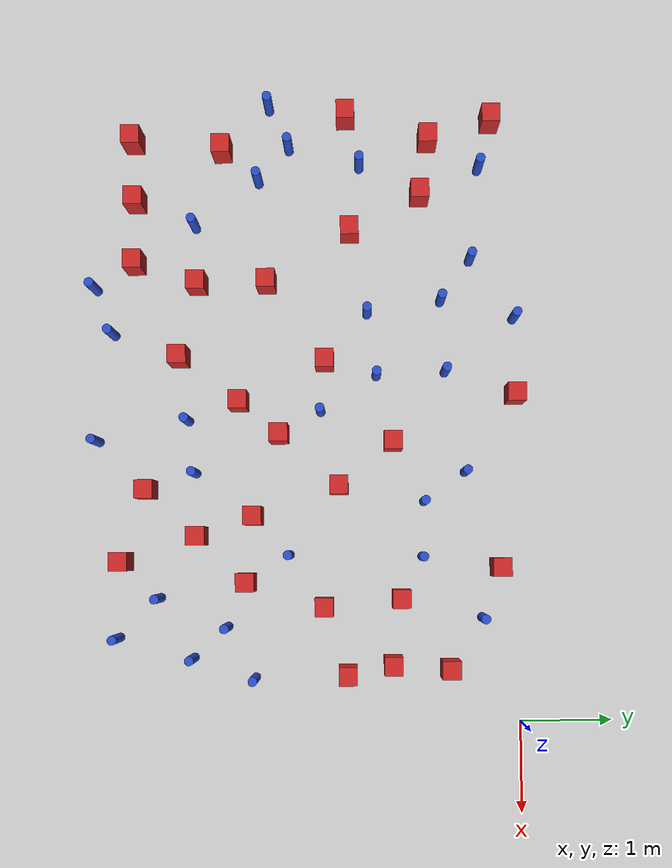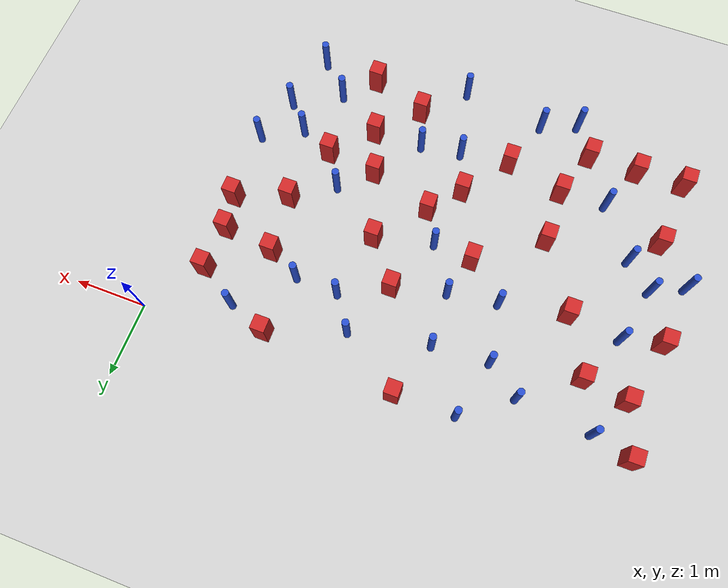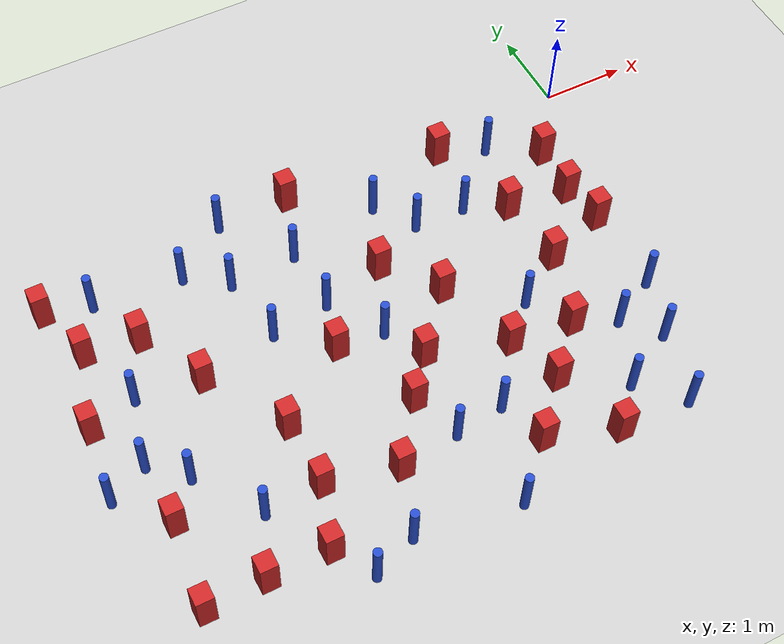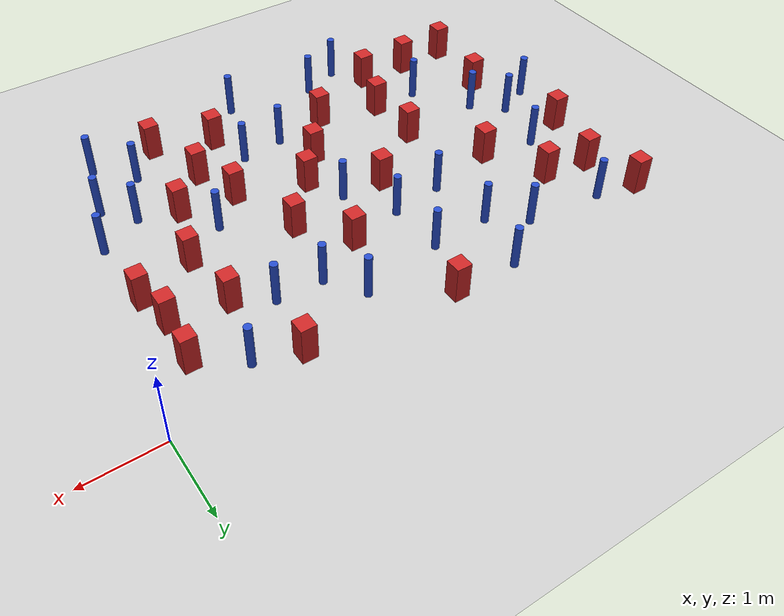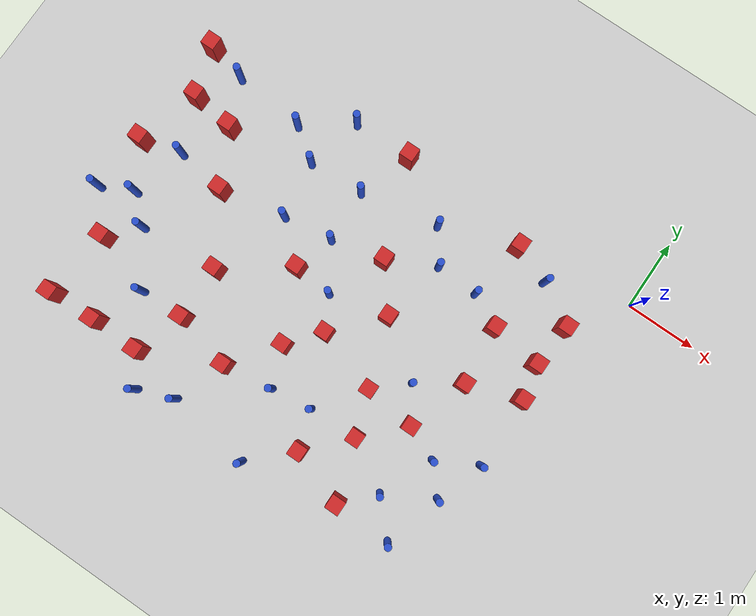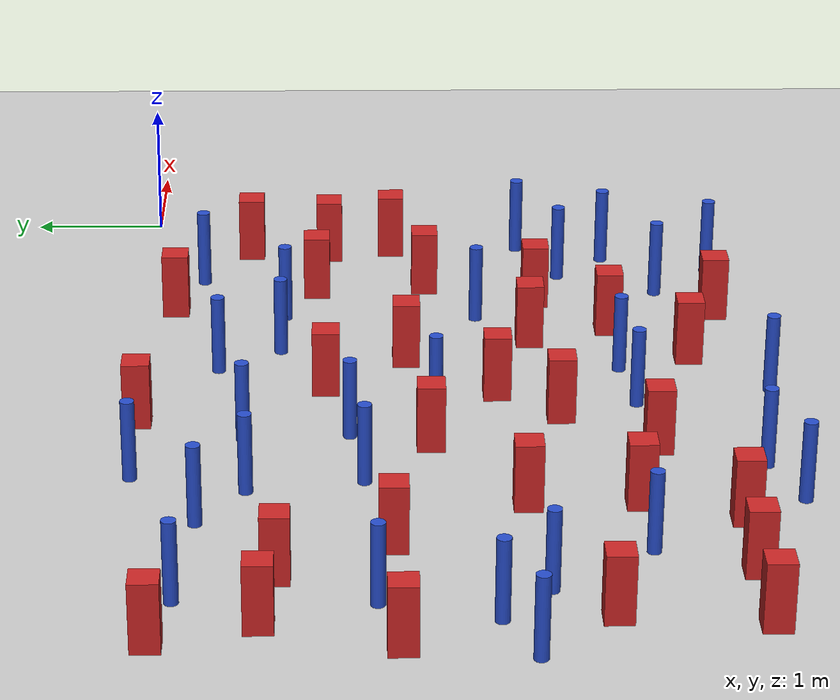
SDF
<sdf version="1.6">
 <world name="default">
  <model name="ground_plane">
   <static>1</static>
   <link name="link">
    <collision name="collision">
     <geometry><plane><normal>0 0 1</normal><size>100 100</size></plane></geometry>
     <surface><friction><ode><mu>100</mu><mu2>50</mu2></ode></friction></surface>
    </collision>
    <visual name="visual">
     <cast_shadows>0</cast_shadows>
     <geometry><plane><normal>0 0 1</normal><size>100 100</size></plane></geometry>
     <material>
      <ambient>1.0 1.0 1.0 1.0</ambient>
      <diffuse>0.8 0.8 0.8 1.0</diffuse>
      <specular>0.01 0.01 0.01 1.000000</specular>
     </material>
    </visual>
   </link>
  </model>
  <model name="square_post_obstacle0">
   <static>true</static>
   <pose>-4.84128660663 -2.74777889471 -6.11067671241e-07 -5.50515727128e-06 -8.79689657224e-07 2.37013304536e-05</pose>
   <link name="link">
    <pose>0 0 0.25 0 -0 0</pose>
    <inertial>
     <mass>100</mass>
     <inertia>
      <ixx>0.166667</ixx>
      <ixy>0</ixy>
      <ixz>0</ixz>
      <iyy>0.166667</iyy>
      <iyz>0</iyz>
      <izz>0.166667</izz>
     </inertia>
    </inertial>
    <collision name="collision"><geometry><box><size>.2 .2 .5</size></box></geometry></collision>
    <visual name="visual">
     <geometry><box><size>.2 .2 .5</size></box></geometry>
     <material>
      <script><name>Gazebo/Red</name><uri>file://media/materials/scripts/gazebo.material</uri></script>
     </material>
    </visual>
   </link>
  </model>
  <model name="pole_obstacle3">
   <static>true</static>
   <pose>-1.37695919305 -3.93688624927 -9.47619616065e-06 5.49618799737e-07 2.36310414062e-07 -1.55090534798e-07</pose>
   <link name="link">
    <pose>0 0 0.3 0 -0 0</pose>
    <inertial>
     <mass>1</mass>
     <inertia><ixx>0.145833</ixx><ixy>0</ixy><ixz>0</ixz><iyy>0.145833</iyy><iyz>0</iyz><izz>0.125</izz></inertia>
    </inertial>
    <collision name="collision">
     <geometry><cylinder><radius>0.05</radius><length>.6</length></cylinder></geometry>
    </collision>
    <visual name="visual">
     <geometry><cylinder><radius>0.05</radius><length>.6</length></cylinder></geometry>
     <material>
      <script><name>Gazebo/Blue</name><uri>file://media/materials/scripts/gazebo.material</uri></script>
     </material>
    </visual>
   </link>
  </model>
  <model name="pole_obstacle5">
   <static>true</static>
   <pose>-3.41100039363 -2.16447534626 -9.47619616065e-06 5.49618799737e-07 2.36310414051e-07 -1.55090534807e-07</pose>
   <link name="link">
    <pose>0 0 0.3 0 -0 0</pose>
    <inertial>
     <mass>1</mass>
     <inertia><ixx>0.145833</ixx><ixy>0</ixy><ixz>0</ixz><iyy>0.145833</iyy><iyz>0</iyz><izz>0.125</izz></inertia>
    </inertial>
    <collision name="collision">
     <geometry><cylinder><radius>0.05</radius><length>.6</length></cylinder></geometry>
    </collision>
    <visual name="visual">
     <geometry><cylinder><radius>0.05</radius><length>.6</length></cylinder></geometry>
     <material>
      <script><name>Gazebo/Blue</name><uri>file://media/materials/scripts/gazebo.material</uri></script>
     </material>
    </visual>
   </link>
  </model>
  <model name="pole_obstacle11">
   <static>true</static>
   <pose>-5.9821969087 -2.83860901818 -9.47619616065e-06 5.49618799738e-07 2.36310414051e-07 -1.55090534805e-07</pose>
   <link name="link">
    <pose>0 0 0.3 0 -0 0</pose>
    <inertial>
     <mass>1</mass>
     <inertia><ixx>0.145833</ixx><ixy>0</ixy><ixz>0</ixz><iyy>0.145833</iyy><iyz>0</iyz><izz>0.125</izz></inertia>
    </inertial>
    <collision name="collision">
     <geometry><cylinder><radius>0.05</radius><length>.6</length></cylinder></geometry>
    </collision>
    <visual name="visual">
     <geometry><cylinder><radius>0.05</radius><length>.6</length></cylinder></geometry>
     <material>
      <script><name>Gazebo/Blue</name><uri>file://media/materials/scripts/gazebo.material</uri></script>
     </material>
    </visual>
   </link>
  </model>
  <model name="pole_obstacle22">
   <static>true</static>
   <pose>-0.49837957228 -2.89466937588 -9.47619616065e-06 5.49618799737e-07 2.36310414073e-07 -1.55090534793e-07</pose>
   <link name="link">
    <pose>0 0 0.3 0 -0 0</pose>
    <inertial>
     <mass>1</mass>
     <inertia><ixx>0.145833</ixx><ixy>0</ixy><ixz>0</ixz><iyy>0.145833</iyy><iyz>0</iyz><izz>0.125</izz></inertia>
    </inertial>
    <collision name="collision">
     <geometry><cylinder><radius>0.05</radius><length>.6</length></cylinder></geometry>
    </collision>
    <visual name="visual">
     <geometry><cylinder><radius>0.05</radius><length>.6</length></cylinder></geometry>
     <material>
      <script><name>Gazebo/Blue</name><uri>file://media/materials/scripts/gazebo.material</uri></script>
     </material>
    </visual>
   </link>
  </model>
  <model name="pole_obstacle31">
   <static>true</static>
   <pose>-5.08320479765 -0.505455529545 -9.47619616065e-06 5.49618799737e-07 2.36310414058e-07 -1.55090534802e-07</pose>
   <link name="link">
    <pose>0 0 0.3 0 -0 0</pose>
    <inertial>
     <mass>1</mass>
     <inertia><ixx>0.145833</ixx><ixy>0</ixy><ixz>0</ixz><iyy>0.145833</iyy><iyz>0</iyz><izz>0.125</izz></inertia>
    </inertial>
    <collision name="collision">
     <geometry><cylinder><radius>0.05</radius><length>.6</length></cylinder></geometry>
    </collision>
    <visual name="visual">
     <geometry><cylinder><radius>0.05</radius><length>.6</length></cylinder></geometry>
     <material>
      <script><name>Gazebo/Blue</name><uri>file://media/materials/scripts/gazebo.material</uri></script>
     </material>
    </visual>
   </link>
  </model>
  <model name="square_post_obstacle27">
   <static>true</static>
   <pose>-2.0511467698 -3.5153492596 -6.11067671241e-07 -5.50515727128e-06 -8.79689657224e-07 2.37013304536e-05</pose>
   <link name="link">
    <pose>0 0 0.25 0 -0 0</pose>
    <inertial>
     <mass>100</mass>
     <inertia>
      <ixx>0.166667</ixx>
      <ixy>0</ixy>
      <ixz>0</ixz>
      <iyy>0.166667</iyy>
      <iyz>0</iyz>
      <izz>0.166667</izz>
     </inertia>
    </inertial>
    <collision name="collision"><geometry><box><size>.2 .2 .5</size></box></geometry></collision>
    <visual name="visual">
     <geometry><box><size>.2 .2 .5</size></box></geometry>
     <material>
      <script><name>Gazebo/Red</name><uri>file://media/materials/scripts/gazebo.material</uri></script>
     </material>
    </visual>
   </link>
  </model>
  <model name="pole_obstacle36">
   <static>true</static>
   <pose>-2.73302566658 -0.580288636693 -9.47619616065e-06 5.49618799738e-07 2.36310414075e-07 -1.55090534793e-07</pose>
   <link name="link">
    <pose>0 0 0.3 0 -0 0</pose>
    <inertial>
     <mass>1</mass>
     <inertia><ixx>0.145833</ixx><ixy>0</ixy><ixz>0</ixz><iyy>0.145833</iyy><iyz>0</iyz><izz>0.125</izz></inertia>
    </inertial>
    <collision name="collision">
     <geometry><cylinder><radius>0.05</radius><length>.6</length></cylinder></geometry>
    </collision>
    <visual name="visual">
     <geometry><cylinder><radius>0.05</radius><length>.6</length></cylinder></geometry>
     <material>
      <script><name>Gazebo/Blue</name><uri>file://media/materials/scripts/gazebo.material</uri></script>
     </material>
    </visual>
   </link>
  </model>
  <model name="pole_obstacle41">
   <static>true</static>
   <pose>-6.35357810904 -2.50001493775 -9.47619616065e-06 5.49618799738e-07 2.36310414051e-07 -1.55090534805e-07</pose>
   <link name="link">
    <pose>0 0 0.3 0 -0 0</pose>
    <inertial>
     <mass>1</mass>
     <inertia><ixx>0.145833</ixx><ixy>0</ixy><ixz>0</ixz><iyy>0.145833</iyy><iyz>0</iyz><izz>0.125</izz></inertia>
    </inertial>
    <collision name="collision">
     <geometry><cylinder><radius>0.05</radius><length>.6</length></cylinder></geometry>
    </collision>
    <visual name="visual">
     <geometry><cylinder><radius>0.05</radius><length>.6</length></cylinder></geometry>
     <material>
      <script><name>Gazebo/Blue</name><uri>file://media/materials/scripts/gazebo.material</uri></script>
     </material>
    </visual>
   </link>
  </model>
  <model name="pole_obstacle47">
   <static>true</static>
   <pose>-3.84033825678 -0.789848276871 -9.47619616065e-06 5.49618799737e-07 2.36310414035e-07 -1.55090534817e-07</pose>
   <link name="link">
    <pose>0 0 0.3 0 -0 0</pose>
    <inertial>
     <mass>1</mass>
     <inertia><ixx>0.145833</ixx><ixy>0</ixy><ixz>0</ixz><iyy>0.145833</iyy><iyz>0</iyz><izz>0.125</izz></inertia>
    </inertial>
    <collision name="collision">
     <geometry><cylinder><radius>0.05</radius><length>.6</length></cylinder></geometry>
    </collision>
    <visual name="visual">
     <geometry><cylinder><radius>0.05</radius><length>.6</length></cylinder></geometry>
     <material>
      <script><name>Gazebo/Blue</name><uri>file://media/materials/scripts/gazebo.material</uri></script>
     </material>
    </visual>
   </link>
  </model>
  <model name="square_post_obstacle36">
   <static>true</static>
   <pose>-1.54274375171 -2.98477448694 -6.11067671241e-07 -5.50515727128e-06 -8.79689657224e-07 2.37013304536e-05</pose>
   <link name="link">
    <pose>0 0 0.25 0 -0 0</pose>
    <inertial>
     <mass>100</mass>
     <inertia>
      <ixx>0.166667</ixx>
      <ixy>0</ixy>
      <ixz>0</ixz>
      <iyy>0.166667</iyy>
      <iyz>0</iyz>
      <izz>0.166667</izz>
     </inertia>
    </inertial>
    <collision name="collision"><geometry><box><size>.2 .2 .5</size></box></geometry></collision>
    <visual name="visual">
     <geometry><box><size>.2 .2 .5</size></box></geometry>
     <material>
      <script><name>Gazebo/Red</name><uri>file://media/materials/scripts/gazebo.material</uri></script>
     </material>
    </visual>
   </link>
  </model>
  <model name="square_post_obstacle38">
   <static>true</static>
   <pose>-1.77886218131 -4.34461334416 -6.11067671241e-07 -5.50515727128e-06 -8.79689657224e-07 2.37013304536e-05</pose>
   <link name="link">
    <pose>0 0 0.25 0 -0 0</pose>
    <inertial>
     <mass>100</mass>
     <inertia>
      <ixx>0.166667</ixx>
      <ixy>0</ixy>
      <ixz>0</ixz>
      <iyy>0.166667</iyy>
      <iyz>0</iyz>
      <izz>0.166667</izz>
     </inertia>
    </inertial>
    <collision name="collision"><geometry><box><size>.2 .2 .5</size></box></geometry></collision>
    <visual name="visual">
     <geometry><box><size>.2 .2 .5</size></box></geometry>
     <material>
      <script><name>Gazebo/Red</name><uri>file://media/materials/scripts/gazebo.material</uri></script>
     </material>
    </visual>
   </link>
  </model>
  <model name="pole_obstacle53">
   <static>true</static>
   <pose>-1.80769380041 -1.05893840154 -9.47619616065e-06 5.49618799737e-07 2.36310414065e-07 -1.55090534798e-07</pose>
   <link name="link">
    <pose>0 0 0.3 0 -0 0</pose>
    <inertial>
     <mass>1</mass>
     <inertia><ixx>0.145833</ixx><ixy>0</ixy><ixz>0</ixz><iyy>0.145833</iyy><iyz>0</iyz><izz>0.125</izz></inertia>
    </inertial>
    <collision name="collision">
     <geometry><cylinder><radius>0.05</radius><length>.6</length></cylinder></geometry>
    </collision>
    <visual name="visual">
     <geometry><cylinder><radius>0.05</radius><length>.6</length></cylinder></geometry>
     <material>
      <script><name>Gazebo/Blue</name><uri>file://media/materials/scripts/gazebo.material</uri></script>
     </material>
    </visual>
   </link>
  </model>
  <model name="pole_obstacle62">
   <static>true</static>
   <pose>-6.10871832045 -0.40047796162 -9.47619616065e-06 5.49618799737e-07 2.36310414057e-07 -1.55090534802e-07</pose>
   <link name="link">
    <pose>0 0 0.3 0 -0 0</pose>
    <inertial>
     <mass>1</mass>
     <inertia><ixx>0.145833</ixx><ixy>0</ixy><ixz>0</ixz><iyy>0.145833</iyy><iyz>0</iyz><izz>0.125</izz></inertia>
    </inertial>
    <collision name="collision">
     <geometry><cylinder><radius>0.05</radius><length>.6</length></cylinder></geometry>
    </collision>
    <visual name="visual">
     <geometry><cylinder><radius>0.05</radius><length>.6</length></cylinder></geometry>
     <material>
      <script><name>Gazebo/Blue</name><uri>file://media/materials/scripts/gazebo.material</uri></script>
     </material>
    </visual>
   </link>
  </model>
  <model name="pole_obstacle65">
   <static>true</static>
   <pose>-4.42916187396 -0.0282269583579 -9.47619616065e-06 5.49618799738e-07 2.36310414057e-07 -1.55090534804e-07</pose>
   <link name="link">
    <pose>0 0 0.3 0 -0 0</pose>
    <inertial>
     <mass>1</mass>
     <inertia><ixx>0.145833</ixx><ixy>0</ixy><ixz>0</ixz><iyy>0.145833</iyy><iyz>0</iyz><izz>0.125</izz></inertia>
    </inertial>
    <collision name="collision">
     <geometry><cylinder><radius>0.05</radius><length>.6</length></cylinder></geometry>
    </collision>
    <visual name="visual">
     <geometry><cylinder><radius>0.05</radius><length>.6</length></cylinder></geometry>
     <material>
      <script><name>Gazebo/Blue</name><uri>file://media/materials/scripts/gazebo.material</uri></script>
     </material>
    </visual>
   </link>
  </model>
  <model name="square_post_obstacle51">
   <static>true</static>
   <pose>-6.42600344967 -0.965142139668 -6.11067671241e-07 -5.50515727128e-06 -8.79689657224e-07 2.37013304536e-05</pose>
   <link name="link">
    <pose>0 0 0.25 0 -0 0</pose>
    <inertial>
     <mass>100</mass>
     <inertia>
      <ixx>0.166667</ixx>
      <ixy>0</ixy>
      <ixz>0</ixz>
      <iyy>0.166667</iyy>
      <iyz>0</iyz>
      <izz>0.166667</izz>
     </inertia>
    </inertial>
    <collision name="collision"><geometry><box><size>.2 .2 .5</size></box></geometry></collision>
    <visual name="visual">
     <geometry><box><size>.2 .2 .5</size></box></geometry>
     <material>
      <script><name>Gazebo/Red</name><uri>file://media/materials/scripts/gazebo.material</uri></script>
     </material>
    </visual>
   </link>
  </model>
  <model name="square_post_obstacle60">
   <static>true</static>
   <pose>-3.52405749522 -3.05882953671 -6.11067671241e-07 -5.50515727128e-06 -8.79689657224e-07 2.37013304536e-05</pose>
   <link name="link">
    <pose>0 0 0.25 0 -0 0</pose>
    <inertial>
     <mass>100</mass>
     <inertia>
      <ixx>0.166667</ixx>
      <ixy>0</ixy>
      <ixz>0</ixz>
      <iyy>0.166667</iyy>
      <iyz>0</iyz>
      <izz>0.166667</izz>
     </inertia>
    </inertial>
    <collision name="collision"><geometry><box><size>.2 .2 .5</size></box></geometry></collision>
    <visual name="visual">
     <geometry><box><size>.2 .2 .5</size></box></geometry>
     <material>
      <script><name>Gazebo/Red</name><uri>file://media/materials/scripts/gazebo.material</uri></script>
     </material>
    </visual>
   </link>
  </model>
  <model name="square_post_obstacle63">
   <static>true</static>
   <pose>-0.587573326329 -0.770791342325 -6.11067671241e-07 -5.50515727128e-06 -8.79689657224e-07 2.37013304536e-05</pose>
   <link name="link">
    <pose>0 0 0.25 0 -0 0</pose>
    <inertial>
     <mass>100</mass>
     <inertia>
      <ixx>0.166667</ixx>
      <ixy>0</ixy>
      <ixz>0</ixz>
      <iyy>0.166667</iyy>
      <iyz>0</iyz>
      <izz>0.166667</izz>
     </inertia>
    </inertial>
    <collision name="collision"><geometry><box><size>.2 .2 .5</size></box></geometry></collision>
    <visual name="visual">
     <geometry><box><size>.2 .2 .5</size></box></geometry>
     <material>
      <script><name>Gazebo/Red</name><uri>file://media/materials/scripts/gazebo.material</uri></script>
     </material>
    </visual>
   </link>
  </model>
  <model name="pole_obstacle76">
   <static>true</static>
   <pose>-6.14608454289 -1.71869938036 -9.47619616065e-06 5.49618799738e-07 2.36310414071e-07 -1.55090534796e-07</pose>
   <link name="link">
    <pose>0 0 0.3 0 -0 0</pose>
    <inertial>
     <mass>1</mass>
     <inertia><ixx>0.145833</ixx><ixy>0</ixy><ixz>0</ixz><iyy>0.145833</iyy><iyz>0</iyz><izz>0.125</izz></inertia>
    </inertial>
    <collision name="collision">
     <geometry><cylinder><radius>0.05</radius><length>.6</length></cylinder></geometry>
    </collision>
    <visual name="visual">
     <geometry><cylinder><radius>0.05</radius><length>.6</length></cylinder></geometry>
     <material>
      <script><name>Gazebo/Blue</name><uri>file://media/materials/scripts/gazebo.material</uri></script>
     </material>
    </visual>
   </link>
  </model>
  <model name="square_post_obstacle66">
   <static>true</static>
   <pose>-6.32720564089 -3.23159054924 -6.11067671241e-07 -5.50515727128e-06 -8.79689657224e-07 2.37013304536e-05</pose>
   <link name="link">
    <pose>0 0 0.25 0 -0 0</pose>
    <inertial>
     <mass>100</mass>
     <inertia>
      <ixx>0.166667</ixx>
      <ixy>0</ixy>
      <ixz>0</ixz>
      <iyy>0.166667</iyy>
      <iyz>0</iyz>
      <izz>0.166667</izz>
     </inertia>
    </inertial>
    <collision name="collision"><geometry><box><size>.2 .2 .5</size></box></geometry></collision>
    <visual name="visual">
     <geometry><box><size>.2 .2 .5</size></box></geometry>
     <material>
      <script><name>Gazebo/Red</name><uri>file://media/materials/scripts/gazebo.material</uri></script>
     </material>
    </visual>
   </link>
  </model>
  <model name="square_post_obstacle79">
   <static>true</static>
   <pose>-0.635135841618 -1.39183422529 -6.11067671241e-07 -5.50515727128e-06 -8.79689657224e-07 2.37013304536e-05</pose>
   <link name="link">
    <pose>0 0 0.25 0 -0 0</pose>
    <inertial>
     <mass>100</mass>
     <inertia>
      <ixx>0.166667</ixx>
      <ixy>0</ixy>
      <ixz>0</ixz>
      <iyy>0.166667</iyy>
      <iyz>0</iyz>
      <izz>0.166667</izz>
     </inertia>
    </inertial>
    <collision name="collision"><geometry><box><size>.2 .2 .5</size></box></geometry></collision>
    <visual name="visual">
     <geometry><box><size>.2 .2 .5</size></box></geometry>
     <material>
      <script><name>Gazebo/Red</name><uri>file://media/materials/scripts/gazebo.material</uri></script>
     </material>
    </visual>
   </link>
  </model>
  <model name="square_post_obstacle82">
   <static>true</static>
   <pose>-4.83109673668 -3.51214688374 -6.11067671241e-07 -5.50515727128e-06 -8.79689657224e-07 2.37013304536e-05</pose>
   <link name="link">
    <pose>0 0 0.25 0 -0 0</pose>
    <inertial>
     <mass>100</mass>
     <inertia>
      <ixx>0.166667</ixx>
      <ixy>0</ixy>
      <ixz>0</ixz>
      <iyy>0.166667</iyy>
      <iyz>0</iyz>
      <izz>0.166667</izz>
     </inertia>
    </inertial>
    <collision name="collision"><geometry><box><size>.2 .2 .5</size></box></geometry></collision>
    <visual name="visual">
     <geometry><box><size>.2 .2 .5</size></box></geometry>
     <material>
      <script><name>Gazebo/Red</name><uri>file://media/materials/scripts/gazebo.material</uri></script>
     </material>
    </visual>
   </link>
  </model>
  <model name="pole_obstacle96">
   <static>true</static>
   <pose>-1.05630389514 -3.19460663701 -9.47619616065e-06 5.49618799737e-07 2.36310414062e-07 -1.55090534798e-07</pose>
   <link name="link">
    <pose>0 0 0.3 0 -0 0</pose>
    <inertial>
     <mass>1</mass>
     <inertia><ixx>0.145833</ixx><ixy>0</ixy><ixz>0</ixz><iyy>0.145833</iyy><iyz>0</iyz><izz>0.125</izz></inertia>
    </inertial>
    <collision name="collision">
     <geometry><cylinder><radius>0.05</radius><length>.6</length></cylinder></geometry>
    </collision>
    <visual name="visual">
     <geometry><cylinder><radius>0.05</radius><length>.6</length></cylinder></geometry>
     <material>
      <script><name>Gazebo/Blue</name><uri>file://media/materials/scripts/gazebo.material</uri></script>
     </material>
    </visual>
   </link>
  </model>
  <model name="pole_obstacle109">
   <static>true</static>
   <pose>-1.13551194174 -0.409582197216 -9.47619616065e-06 5.49618799737e-07 2.36310414064e-07 -1.55090534799e-07</pose>
   <link name="link">
    <pose>0 0 0.3 0 -0 0</pose>
    <inertial>
     <mass>1</mass>
     <inertia><ixx>0.145833</ixx><ixy>0</ixy><ixz>0</ixz><iyy>0.145833</iyy><iyz>0</iyz><izz>0.125</izz></inertia>
    </inertial>
    <collision name="collision">
     <geometry><cylinder><radius>0.05</radius><length>.6</length></cylinder></geometry>
    </collision>
    <visual name="visual">
     <geometry><cylinder><radius>0.05</radius><length>.6</length></cylinder></geometry>
     <material>
      <script><name>Gazebo/Blue</name><uri>file://media/materials/scripts/gazebo.material</uri></script>
     </material>
    </visual>
   </link>
  </model>
  <model name="square_post_obstacle106">
   <static>true</static>
   <pose>-5.81318224602 -1.05774597907 -6.11067671241e-07 -5.50515727128e-06 -8.79689657224e-07 2.37013304536e-05</pose>
   <link name="link">
    <pose>0 0 0.25 0 -0 0</pose>
    <inertial>
     <mass>100</mass>
     <inertia>
      <ixx>0.166667</ixx>
      <ixy>0</ixy>
      <ixz>0</ixz>
      <iyy>0.166667</iyy>
      <iyz>0</iyz>
      <izz>0.166667</izz>
     </inertia>
    </inertial>
    <collision name="collision"><geometry><box><size>.2 .2 .5</size></box></geometry></collision>
    <visual name="visual">
     <geometry><box><size>.2 .2 .5</size></box></geometry>
     <material>
      <script><name>Gazebo/Red</name><uri>file://media/materials/scripts/gazebo.material</uri></script>
     </material>
    </visual>
   </link>
  </model>
  <model name="square_post_obstacle114">
   <static>true</static>
   <pose>-2.56096572682 -4.07242955019 -6.11067671241e-07 -5.50515727128e-06 -8.79689657224e-07 2.37013304536e-05</pose>
   <link name="link">
    <pose>0 0 0.25 0 -0 0</pose>
    <inertial>
     <mass>100</mass>
     <inertia>
      <ixx>0.166667</ixx>
      <ixy>0</ixy>
      <ixz>0</ixz>
      <iyy>0.166667</iyy>
      <iyz>0</iyz>
      <izz>0.166667</izz>
     </inertia>
    </inertial>
    <collision name="collision"><geometry><box><size>.2 .2 .5</size></box></geometry></collision>
    <visual name="visual">
     <geometry><box><size>.2 .2 .5</size></box></geometry>
     <material>
      <script><name>Gazebo/Red</name><uri>file://media/materials/scripts/gazebo.material</uri></script>
     </material>
    </visual>
   </link>
  </model>
  <model name="pole_obstacle118">
   <static>true</static>
   <pose>-5.48077804806 -3.54085793788 -9.47619616065e-06 5.49618799738e-07 2.36310414051e-07 -1.55090534805e-07</pose>
   <link name="link">
    <pose>0 0 0.3 0 -0 0</pose>
    <inertial>
     <mass>1</mass>
     <inertia><ixx>0.145833</ixx><ixy>0</ixy><ixz>0</ixz><iyy>0.145833</iyy><iyz>0</iyz><izz>0.125</izz></inertia>
    </inertial>
    <collision name="collision">
     <geometry><cylinder><radius>0.05</radius><length>.6</length></cylinder></geometry>
    </collision>
    <visual name="visual">
     <geometry><cylinder><radius>0.05</radius><length>.6</length></cylinder></geometry>
     <material>
      <script><name>Gazebo/Blue</name><uri>file://media/materials/scripts/gazebo.material</uri></script>
     </material>
    </visual>
   </link>
  </model>
  <model name="pole_obstacle120">
   <static>true</static>
   <pose>-3.3192171791 -3.62248819809 -9.47619616065e-06 5.49618799737e-07 2.36310414051e-07 -1.55090534807e-07</pose>
   <link name="link">
    <pose>0 0 0.3 0 -0 0</pose>
    <inertial>
     <mass>1</mass>
     <inertia><ixx>0.145833</ixx><ixy>0</ixy><ixz>0</ixz><iyy>0.145833</iyy><iyz>0</iyz><izz>0.125</izz></inertia>
    </inertial>
    <collision name="collision">
     <geometry><cylinder><radius>0.05</radius><length>.6</length></cylinder></geometry>
    </collision>
    <visual name="visual">
     <geometry><cylinder><radius>0.05</radius><length>.6</length></cylinder></geometry>
     <material>
      <script><name>Gazebo/Blue</name><uri>file://media/materials/scripts/gazebo.material</uri></script>
     </material>
    </visual>
   </link>
  </model>
  <model name="square_post_obstacle133">
   <static>true</static>
   <pose>-6.63977184451 -0.272111928395 -6.11067671241e-07 -5.50515727128e-06 -8.79689657224e-07 2.37013304536e-05</pose>
   <link name="link">
    <pose>0 0 0.25 0 -0 0</pose>
    <inertial>
     <mass>100</mass>
     <inertia>
      <ixx>0.166667</ixx>
      <ixy>0</ixy>
      <ixz>0</ixz>
      <iyy>0.166667</iyy>
      <iyz>0</iyz>
      <izz>0.166667</izz>
     </inertia>
    </inertial>
    <collision name="collision"><geometry><box><size>.2 .2 .5</size></box></geometry></collision>
    <visual name="visual">
     <geometry><box><size>.2 .2 .5</size></box></geometry>
     <material>
      <script><name>Gazebo/Red</name><uri>file://media/materials/scripts/gazebo.material</uri></script>
     </material>
    </visual>
   </link>
  </model>
  <model name="pole_obstacle139">
   <static>true</static>
   <pose>-4.63003498217 -0.832351662088 -9.47619616065e-06 5.49618799737e-07 2.36310414061e-07 -1.550905348e-07</pose>
   <link name="link">
    <pose>0 0 0.3 0 -0 0</pose>
    <inertial>
     <mass>1</mass>
     <inertia><ixx>0.145833</ixx><ixy>0</ixy><ixz>0</ixz><iyy>0.145833</iyy><iyz>0</iyz><izz>0.125</izz></inertia>
    </inertial>
    <collision name="collision">
     <geometry><cylinder><radius>0.05</radius><length>.6</length></cylinder></geometry>
    </collision>
    <visual name="visual">
     <geometry><cylinder><radius>0.05</radius><length>.6</length></cylinder></geometry>
     <material>
      <script><name>Gazebo/Blue</name><uri>file://media/materials/scripts/gazebo.material</uri></script>
     </material>
    </visual>
   </link>
  </model>
  <model name="square_post_obstacle136">
   <static>true</static>
   <pose>-3.06639972245 -1.37373991034 -6.11067671241e-07 -5.50515727128e-06 -8.79689657224e-07 2.37013304536e-05</pose>
   <link name="link">
    <pose>0 0 0.25 0 -0 0</pose>
    <inertial>
     <mass>100</mass>
     <inertia>
      <ixx>0.166667</ixx>
      <ixy>0</ixy>
      <ixz>0</ixz>
      <iyy>0.166667</iyy>
      <iyz>0</iyz>
      <izz>0.166667</izz>
     </inertia>
    </inertial>
    <collision name="collision"><geometry><box><size>.2 .2 .5</size></box></geometry></collision>
    <visual name="visual">
     <geometry><box><size>.2 .2 .5</size></box></geometry>
     <material>
      <script><name>Gazebo/Red</name><uri>file://media/materials/scripts/gazebo.material</uri></script>
     </material>
    </visual>
   </link>
  </model>
  <model name="square_post_obstacle140">
   <static>true</static>
   <pose>-4.01810251527 -3.71162017537 -6.11067671241e-07 -5.50515727128e-06 -8.79689657224e-07 2.37013304536e-05</pose>
   <link name="link">
    <pose>0 0 0.25 0 -0 0</pose>
    <inertial>
     <mass>100</mass>
     <inertia>
      <ixx>0.166667</ixx>
      <ixy>0</ixy>
      <ixz>0</ixz>
      <iyy>0.166667</iyy>
      <iyz>0</iyz>
      <izz>0.166667</izz>
     </inertia>
    </inertial>
    <collision name="collision"><geometry><box><size>.2 .2 .5</size></box></geometry></collision>
    <visual name="visual">
     <geometry><box><size>.2 .2 .5</size></box></geometry>
     <material>
      <script><name>Gazebo/Red</name><uri>file://media/materials/scripts/gazebo.material</uri></script>
     </material>
    </visual>
   </link>
  </model>
  <model name="pole_obstacle146">
   <static>true</static>
   <pose>-6.80927986689 -2.71614851145 -9.47619616065e-06 5.49618799738e-07 2.36310414051e-07 -1.55090534805e-07</pose>
   <link name="link">
    <pose>0 0 0.3 0 -0 0</pose>
    <inertial>
     <mass>1</mass>
     <inertia><ixx>0.145833</ixx><ixy>0</ixy><ixz>0</ixz><iyy>0.145833</iyy><iyz>0</iyz><izz>0.125</izz></inertia>
    </inertial>
    <collision name="collision">
     <geometry><cylinder><radius>0.05</radius><length>.6</length></cylinder></geometry>
    </collision>
    <visual name="visual">
     <geometry><cylinder><radius>0.05</radius><length>.6</length></cylinder></geometry>
     <material>
      <script><name>Gazebo/Blue</name><uri>file://media/materials/scripts/gazebo.material</uri></script>
     </material>
    </visual>
   </link>
  </model>
  <model name="pole_obstacle153">
   <static>true</static>
   <pose>-4.28093871795 -4.44312574459 -9.47619616065e-06 5.49618799737e-07 2.36310414037e-07 -1.55090534814e-07</pose>
   <link name="link">
    <pose>0 0 0.3 0 -0 0</pose>
    <inertial>
     <mass>1</mass>
     <inertia><ixx>0.145833</ixx><ixy>0</ixy><ixz>0</ixz><iyy>0.145833</iyy><iyz>0</iyz><izz>0.125</izz></inertia>
    </inertial>
    <collision name="collision">
     <geometry><cylinder><radius>0.05</radius><length>.6</length></cylinder></geometry>
    </collision>
    <visual name="visual">
     <geometry><cylinder><radius>0.05</radius><length>.6</length></cylinder></geometry>
     <material>
      <script><name>Gazebo/Blue</name><uri>file://media/materials/scripts/gazebo.material</uri></script>
     </material>
    </visual>
   </link>
  </model>
  <model name="pole_obstacle157">
   <static>true</static>
   <pose>-2.41154577797 -1.03442676005 -9.47619616065e-06 5.49618799738e-07 2.3631041407e-07 -1.55090534797e-07</pose>
   <link name="link">
    <pose>0 0 0.3 0 -0 0</pose>
    <inertial>
     <mass>1</mass>
     <inertia><ixx>0.145833</ixx><ixy>0</ixy><ixz>0</ixz><iyy>0.145833</iyy><iyz>0</iyz><izz>0.125</izz></inertia>
    </inertial>
    <collision name="collision">
     <geometry><cylinder><radius>0.05</radius><length>.6</length></cylinder></geometry>
    </collision>
    <visual name="visual">
     <geometry><cylinder><radius>0.05</radius><length>.6</length></cylinder></geometry>
     <material>
      <script><name>Gazebo/Blue</name><uri>file://media/materials/scripts/gazebo.material</uri></script>
     </material>
    </visual>
   </link>
  </model>
  <model name="square_post_obstacle154">
   <static>true</static>
   <pose>-1.6868273397 -0.213998480827 -6.11067671241e-07 -5.50515727128e-06 -8.79689657224e-07 2.37013304536e-05</pose>
   <link name="link">
    <pose>0 0 0.25 0 -0 0</pose>
    <inertial>
     <mass>100</mass>
     <inertia>
      <ixx>0.166667</ixx>
      <ixy>0</ixy>
      <ixz>0</ixz>
      <iyy>0.166667</iyy>
      <iyz>0</iyz>
      <izz>0.166667</izz>
     </inertia>
    </inertial>
    <collision name="collision"><geometry><box><size>.2 .2 .5</size></box></geometry></collision>
    <visual name="visual">
     <geometry><box><size>.2 .2 .5</size></box></geometry>
     <material>
      <script><name>Gazebo/Red</name><uri>file://media/materials/scripts/gazebo.material</uri></script>
     </material>
    </visual>
   </link>
  </model>
  <model name="square_post_obstacle155">
   <static>true</static>
   <pose>-3.16022554428 -2.61654097322 -6.11067671241e-07 -5.50515727128e-06 -8.79689657224e-07 2.37013304536e-05</pose>
   <link name="link">
    <pose>0 0 0.25 0 -0 0</pose>
    <inertial>
     <mass>100</mass>
     <inertia>
      <ixx>0.166667</ixx>
      <ixy>0</ixy>
      <ixz>0</ixz>
      <iyy>0.166667</iyy>
      <iyz>0</iyz>
      <izz>0.166667</izz>
     </inertia>
    </inertial>
    <collision name="collision"><geometry><box><size>.2 .2 .5</size></box></geometry></collision>
    <visual name="visual">
     <geometry><box><size>.2 .2 .5</size></box></geometry>
     <material>
      <script><name>Gazebo/Red</name><uri>file://media/materials/scripts/gazebo.material</uri></script>
     </material>
    </visual>
   </link>
  </model>
  <model name="square_post_obstacle162">
   <static>true</static>
   <pose>-3.96415729115 -2.11463658586 -6.11067671241e-07 -5.50515727128e-06 -8.79689657224e-07 2.37013304536e-05</pose>
   <link name="link">
    <pose>0 0 0.25 0 -0 0</pose>
    <inertial>
     <mass>100</mass>
     <inertia>
      <ixx>0.166667</ixx>
      <ixy>0</ixy>
      <ixz>0</ixz>
      <iyy>0.166667</iyy>
      <iyz>0</iyz>
      <izz>0.166667</izz>
     </inertia>
    </inertial>
    <collision name="collision"><geometry><box><size>.2 .2 .5</size></box></geometry></collision>
    <visual name="visual">
     <geometry><box><size>.2 .2 .5</size></box></geometry>
     <material>
      <script><name>Gazebo/Red</name><uri>file://media/materials/scripts/gazebo.material</uri></script>
     </material>
    </visual>
   </link>
  </model>
  <model name="square_post_obstacle164">
   <static>true</static>
   <pose>-2.26397620219 -2.90238990999 -6.11067671241e-07 -5.50515727128e-06 -8.79689657224e-07 2.37013304536e-05</pose>
   <link name="link">
    <pose>0 0 0.25 0 -0 0</pose>
    <inertial>
     <mass>100</mass>
     <inertia>
      <ixx>0.166667</ixx>
      <ixy>0</ixy>
      <ixz>0</ixz>
      <iyy>0.166667</iyy>
      <iyz>0</iyz>
      <izz>0.166667</izz>
     </inertia>
    </inertial>
    <collision name="collision"><geometry><box><size>.2 .2 .5</size></box></geometry></collision>
    <visual name="visual">
     <geometry><box><size>.2 .2 .5</size></box></geometry>
     <material>
      <script><name>Gazebo/Red</name><uri>file://media/materials/scripts/gazebo.material</uri></script>
     </material>
    </visual>
   </link>
  </model>
  <model name="square_post_obstacle167">
   <static>true</static>
   <pose>-5.41012203224 -1.83025703435 -6.11067671241e-07 -5.50515727128e-06 -8.79689657224e-07 2.37013304536e-05</pose>
   <link name="link">
    <pose>0 0 0.25 0 -0 0</pose>
    <inertial>
     <mass>100</mass>
     <inertia>
      <ixx>0.166667</ixx>
      <ixy>0</ixy>
      <ixz>0</ixz>
      <iyy>0.166667</iyy>
      <iyz>0</iyz>
      <izz>0.166667</izz>
     </inertia>
    </inertial>
    <collision name="collision"><geometry><box><size>.2 .2 .5</size></box></geometry></collision>
    <visual name="visual">
     <geometry><box><size>.2 .2 .5</size></box></geometry>
     <material>
      <script><name>Gazebo/Red</name><uri>file://media/materials/scripts/gazebo.material</uri></script>
     </material>
    </visual>
   </link>
  </model>
  <model name="square_post_obstacle170">
   <static>true</static>
   <pose>-0.534289394633 -1.88187171109 -6.11067671241e-07 -5.50515727128e-06 -8.79689657224e-07 2.37013304536e-05</pose>
   <link name="link">
    <pose>0 0 0.25 0 -0 0</pose>
    <inertial>
     <mass>100</mass>
     <inertia>
      <ixx>0.166667</ixx>
      <ixy>0</ixy>
      <ixz>0</ixz>
      <iyy>0.166667</iyy>
      <iyz>0</iyz>
      <izz>0.166667</izz>
     </inertia>
    </inertial>
    <collision name="collision"><geometry><box><size>.2 .2 .5</size></box></geometry></collision>
    <visual name="visual">
     <geometry><box><size>.2 .2 .5</size></box></geometry>
     <material>
      <script><name>Gazebo/Red</name><uri>file://media/materials/scripts/gazebo.material</uri></script>
     </material>
    </visual>
   </link>
  </model>
  <model name="square_post_obstacle172">
   <static>true</static>
   <pose>-6.43633008051 -4.2153393688 -6.11067671241e-07 -5.50515727128e-06 -8.79689657224e-07 2.37013304536e-05</pose>
   <link name="link">
    <pose>0 0 0.25 0 -0 0</pose>
    <inertial>
     <mass>100</mass>
     <inertia>
      <ixx>0.166667</ixx>
      <ixy>0</ixy>
      <ixz>0</ixz>
      <iyy>0.166667</iyy>
      <iyz>0</iyz>
      <izz>0.166667</izz>
     </inertia>
    </inertial>
    <collision name="collision"><geometry><box><size>.2 .2 .5</size></box></geometry></collision>
    <visual name="visual">
     <geometry><box><size>.2 .2 .5</size></box></geometry>
     <material>
      <script><name>Gazebo/Red</name><uri>file://media/materials/scripts/gazebo.material</uri></script>
     </material>
    </visual>
   </link>
  </model>
  <model name="pole_obstacle178">
   <static>true</static>
   <pose>-0.720351956792 -3.56730865471 -9.47619616065e-06 5.49618799737e-07 2.36310414066e-07 -1.55090534797e-07</pose>
   <link name="link">
    <pose>0 0 0.3 0 -0 0</pose>
    <inertial>
     <mass>1</mass>
     <inertia><ixx>0.145833</ixx><ixy>0</ixy><ixz>0</ixz><iyy>0.145833</iyy><iyz>0</iyz><izz>0.125</izz></inertia>
    </inertial>
    <collision name="collision">
     <geometry><cylinder><radius>0.05</radius><length>.6</length></cylinder></geometry>
    </collision>
    <visual name="visual">
     <geometry><cylinder><radius>0.05</radius><length>.6</length></cylinder></geometry>
     <material>
      <script><name>Gazebo/Blue</name><uri>file://media/materials/scripts/gazebo.material</uri></script>
     </material>
    </visual>
   </link>
  </model>
  <model name="pole_obstacle179">
   <static>true</static>
   <pose>-2.74109266507 -3.544097177 -9.47619616065e-06 5.49618799737e-07 2.36310414051e-07 -1.55090534807e-07</pose>
   <link name="link">
    <pose>0 0 0.3 0 -0 0</pose>
    <inertial>
     <mass>1</mass>
     <inertia><ixx>0.145833</ixx><ixy>0</ixy><ixz>0</ixz><iyy>0.145833</iyy><iyz>0</iyz><izz>0.125</izz></inertia>
    </inertial>
    <collision name="collision">
     <geometry><cylinder><radius>0.05</radius><length>.6</length></cylinder></geometry>
    </collision>
    <visual name="visual">
     <geometry><cylinder><radius>0.05</radius><length>.6</length></cylinder></geometry>
     <material>
      <script><name>Gazebo/Blue</name><uri>file://media/materials/scripts/gazebo.material</uri></script>
     </material>
    </visual>
   </link>
  </model>
  <model name="square_post_obstacle180">
   <static>true</static>
   <pose>-1.35289642561 -1.29647406538 -6.11067671241e-07 -5.50515727128e-06 -8.79689657224e-07 2.37013304536e-05</pose>
   <link name="link">
    <pose>0 0 0.25 0 -0 0</pose>
    <inertial>
     <mass>100</mass>
     <inertia>
      <ixx>0.166667</ixx>
      <ixy>0</ixy>
      <ixz>0</ixz>
      <iyy>0.166667</iyy>
      <iyz>0</iyz>
      <izz>0.166667</izz>
     </inertia>
    </inertial>
    <collision name="collision"><geometry><box><size>.2 .2 .5</size></box></geometry></collision>
    <visual name="visual">
     <geometry><box><size>.2 .2 .5</size></box></geometry>
     <material>
      <script><name>Gazebo/Red</name><uri>file://media/materials/scripts/gazebo.material</uri></script>
     </material>
    </visual>
   </link>
  </model>
  <model name="pole_obstacle181">
   <static>true</static>
   <pose>-0.946308260373 -4.38715610382 -9.47619616065e-06 5.49618799737e-07 2.36310414065e-07 -1.55090534796e-07</pose>
   <link name="link">
    <pose>0 0 0.3 0 -0 0</pose>
    <inertial>
     <mass>1</mass>
     <inertia><ixx>0.145833</ixx><ixy>0</ixy><ixz>0</ixz><iyy>0.145833</iyy><iyz>0</iyz><izz>0.125</izz></inertia>
    </inertial>
    <collision name="collision">
     <geometry><cylinder><radius>0.05</radius><length>.6</length></cylinder></geometry>
    </collision>
    <visual name="visual">
     <geometry><cylinder><radius>0.05</radius><length>.6</length></cylinder></geometry>
     <material>
      <script><name>Gazebo/Blue</name><uri>file://media/materials/scripts/gazebo.material</uri></script>
     </material>
    </visual>
   </link>
  </model>
  <model name="square_post_obstacle185">
   <static>true</static>
   <pose>-1.27132716846 -2.1348516585 -6.11067671241e-07 -5.50515727128e-06 -8.79689657224e-07 2.37013304536e-05</pose>
   <link name="link">
    <pose>0 0 0.25 0 -0 0</pose>
    <inertial>
     <mass>100</mass>
     <inertia>
      <ixx>0.166667</ixx>
      <ixy>0</ixy>
      <ixz>0</ixz>
      <iyy>0.166667</iyy>
      <iyz>0</iyz>
      <izz>0.166667</izz>
     </inertia>
    </inertial>
    <collision name="collision"><geometry><box><size>.2 .2 .5</size></box></geometry></collision>
    <visual name="visual">
     <geometry><box><size>.2 .2 .5</size></box></geometry>
     <material>
      <script><name>Gazebo/Red</name><uri>file://media/materials/scripts/gazebo.material</uri></script>
     </material>
    </visual>
   </link>
  </model>
  <model name="square_post_obstacle190">
   <static>true</static>
   <pose>-6.69329674279 -1.86782247653 -6.11067671241e-07 -5.50515727128e-06 -8.79689657224e-07 2.37013304536e-05</pose>
   <link name="link">
    <pose>0 0 0.25 0 -0 0</pose>
    <inertial>
     <mass>100</mass>
     <inertia>
      <ixx>0.166667</ixx>
      <ixy>0</ixy>
      <ixz>0</ixz>
      <iyy>0.166667</iyy>
      <iyz>0</iyz>
      <izz>0.166667</izz>
     </inertia>
    </inertial>
    <collision name="collision"><geometry><box><size>.2 .2 .5</size></box></geometry></collision>
    <visual name="visual">
     <geometry><box><size>.2 .2 .5</size></box></geometry>
     <material>
      <script><name>Gazebo/Red</name><uri>file://media/materials/scripts/gazebo.material</uri></script>
     </material>
    </visual>
   </link>
  </model>
  <model name="pole_obstacle190">
   <static>true</static>
   <pose>-4.78676470318 -4.63949004766 -9.47619616065e-06 5.49618799737e-07 2.36310414037e-07 -1.55090534814e-07</pose>
   <link name="link">
    <pose>0 0 0.3 0 -0 0</pose>
    <inertial>
     <mass>1</mass>
     <inertia><ixx>0.145833</ixx><ixy>0</ixy><ixz>0</ixz><iyy>0.145833</iyy><iyz>0</iyz><izz>0.125</izz></inertia>
    </inertial>
    <collision name="collision">
     <geometry><cylinder><radius>0.05</radius><length>.6</length></cylinder></geometry>
    </collision>
    <visual name="visual">
     <geometry><cylinder><radius>0.05</radius><length>.6</length></cylinder></geometry>
     <material>
      <script><name>Gazebo/Blue</name><uri>file://media/materials/scripts/gazebo.material</uri></script>
     </material>
    </visual>
   </link>
  </model>
  <model name="square_post_obstacle206">
   <static>true</static>
   <pose>-3.57953459082 -0.0299931687815 -6.11067671241e-07 -5.50515727128e-06 -8.79689657224e-07 2.37013304536e-05</pose>
   <link name="link">
    <pose>0 0 0.25 0 -0 0</pose>
    <inertial>
     <mass>100</mass>
     <inertia>
      <ixx>0.166667</ixx>
      <ixy>0</ixy>
      <ixz>0</ixz>
      <iyy>0.166667</iyy>
      <iyz>0</iyz>
      <izz>0.166667</izz>
     </inertia>
    </inertial>
    <collision name="collision"><geometry><box><size>.2 .2 .5</size></box></geometry></collision>
    <visual name="visual">
     <geometry><box><size>.2 .2 .5</size></box></geometry>
     <material>
      <script><name>Gazebo/Red</name><uri>file://media/materials/scripts/gazebo.material</uri></script>
     </material>
    </visual>
   </link>
  </model>
  <model name="pole_obstacle197">
   <static>true</static>
   <pose>-4.498055987 -1.64493804019 -9.47619616065e-06 5.49618799738e-07 2.36310414071e-07 -1.55090534796e-07</pose>
   <link name="link">
    <pose>0 0 0.3 0 -0 0</pose>
    <inertial>
     <mass>1</mass>
     <inertia><ixx>0.145833</ixx><ixy>0</ixy><ixz>0</ixz><iyy>0.145833</iyy><iyz>0</iyz><izz>0.125</izz></inertia>
    </inertial>
    <collision name="collision">
     <geometry><cylinder><radius>0.05</radius><length>.6</length></cylinder></geometry>
    </collision>
    <visual name="visual">
     <geometry><cylinder><radius>0.05</radius><length>.6</length></cylinder></geometry>
     <material>
      <script><name>Gazebo/Blue</name><uri>file://media/materials/scripts/gazebo.material</uri></script>
     </material>
    </visual>
   </link>
  </model>
  <model name="pole_obstacle199">
   <static>true</static>
   <pose>-3.80455426158 -1.54742914858 -9.47619616065e-06 5.49618799737e-07 2.36310414072e-07 -1.55090534793e-07</pose>
   <link name="link">
    <pose>0 0 0.3 0 -0 0</pose>
    <inertial>
     <mass>1</mass>
     <inertia><ixx>0.145833</ixx><ixy>0</ixy><ixz>0</ixz><iyy>0.145833</iyy><iyz>0</iyz><izz>0.125</izz></inertia>
    </inertial>
    <collision name="collision">
     <geometry><cylinder><radius>0.05</radius><length>.6</length></cylinder></geometry>
    </collision>
    <visual name="visual">
     <geometry><cylinder><radius>0.05</radius><length>.6</length></cylinder></geometry>
     <material>
      <script><name>Gazebo/Blue</name><uri>file://media/materials/scripts/gazebo.material</uri></script>
     </material>
    </visual>
   </link>
  </model>
  <model name="pole_obstacle201">
   <static>true</static>
   <pose>-1.8348142541 -2.51577611066 -9.47619616065e-06 5.49618799737e-07 2.36310414062e-07 -1.55090534798e-07</pose>
   <link name="link">
    <pose>0 0 0.3 0 -0 0</pose>
    <inertial>
     <mass>1</mass>
     <inertia><ixx>0.145833</ixx><ixy>0</ixy><ixz>0</ixz><iyy>0.145833</iyy><iyz>0</iyz><izz>0.125</izz></inertia>
    </inertial>
    <collision name="collision">
     <geometry><cylinder><radius>0.05</radius><length>.6</length></cylinder></geometry>
    </collision>
    <visual name="visual">
     <geometry><cylinder><radius>0.05</radius><length>.6</length></cylinder></geometry>
     <material>
      <script><name>Gazebo/Blue</name><uri>file://media/materials/scripts/gazebo.material</uri></script>
     </material>
    </visual>
   </link>
  </model>
  <model name="square_post_obstacle209">
   <static>true</static>
   <pose>-5.76135651945 -4.19230048834 -6.11067671241e-07 -5.50515727128e-06 -8.79689657224e-07 2.37013304536e-05</pose>
   <link name="link">
    <pose>0 0 0.25 0 -0 0</pose>
    <inertial>
     <mass>100</mass>
     <inertia>
      <ixx>0.166667</ixx>
      <ixy>0</ixy>
      <ixz>0</ixz>
      <iyy>0.166667</iyy>
      <iyz>0</iyz>
      <izz>0.166667</izz>
     </inertia>
    </inertial>
    <collision name="collision"><geometry><box><size>.2 .2 .5</size></box></geometry></collision>
    <visual name="visual">
     <geometry><box><size>.2 .2 .5</size></box></geometry>
     <material>
      <script><name>Gazebo/Red</name><uri>file://media/materials/scripts/gazebo.material</uri></script>
     </material>
    </visual>
   </link>
  </model>
  <model name="pole_obstacle211">
   <static>true</static>
   <pose>-3.09856738801 -4.61627196742 -9.4761961606e-06 5.49618799729e-07 2.36310414006e-07 -1.55090534822e-07</pose>
   <link name="link">
    <pose>0 0 0.3 0 -0 0</pose>
    <inertial>
     <mass>1</mass>
     <inertia><ixx>0.145833</ixx><ixy>0</ixy><ixz>0</ixz><iyy>0.145833</iyy><iyz>0</iyz><izz>0.125</izz></inertia>
    </inertial>
    <collision name="collision">
     <geometry><cylinder><radius>0.05</radius><length>.6</length></cylinder></geometry>
    </collision>
    <visual name="visual">
     <geometry><cylinder><radius>0.05</radius><length>.6</length></cylinder></geometry>
     <material>
      <script><name>Gazebo/Blue</name><uri>file://media/materials/scripts/gazebo.material</uri></script>
     </material>
    </visual>
   </link>
  </model>
  <model name="square_post_obstacle222">
   <static>true</static>
   <pose>-2.5906700498 -1.96736002312 -6.11067671241e-07 -5.50515727128e-06 -8.79689657224e-07 2.37013304536e-05</pose>
   <link name="link">
    <pose>0 0 0.25 0 -0 0</pose>
    <inertial>
     <mass>100</mass>
     <inertia>
      <ixx>0.166667</ixx>
      <ixy>0</ixy>
      <ixz>0</ixz>
      <iyy>0.166667</iyy>
      <iyz>0</iyz>
      <izz>0.166667</izz>
     </inertia>
    </inertial>
    <collision name="collision"><geometry><box><size>.2 .2 .5</size></box></geometry></collision>
    <visual name="visual">
     <geometry><box><size>.2 .2 .5</size></box></geometry>
     <material>
      <script><name>Gazebo/Red</name><uri>file://media/materials/scripts/gazebo.material</uri></script>
     </material>
    </visual>
   </link>
  </model>
  <model name="square_post_obstacle224">
   <static>true</static>
   <pose>-5.0652000498 -4.19899002312 -6.11067671241e-07 -5.50515727128e-06 -8.79689657224e-07 2.37013304536e-05</pose>
   <link name="link">
    <pose>0 0 0.25 0 -0 0</pose>
    <inertial>
     <mass>100</mass>
     <inertia>
      <ixx>0.166667</ixx>
      <ixy>0</ixy>
      <ixz>0</ixz>
      <iyy>0.166667</iyy>
      <iyz>0</iyz>
      <izz>0.166667</izz>
     </inertia>
    </inertial>
    <collision name="collision"><geometry><box><size>.2 .2 .5</size></box></geometry></collision>
    <visual name="visual">
     <geometry><box><size>.2 .2 .5</size></box></geometry>
     <material>
      <script><name>Gazebo/Red</name><uri>file://media/materials/scripts/gazebo.material</uri></script>
     </material>
    </visual>
   </link>
  </model>
 </world>
</sdf>
